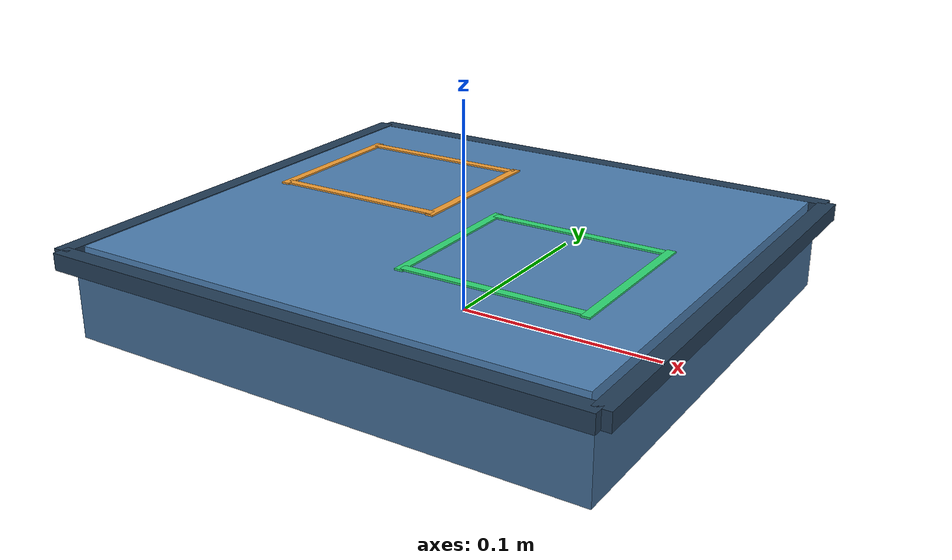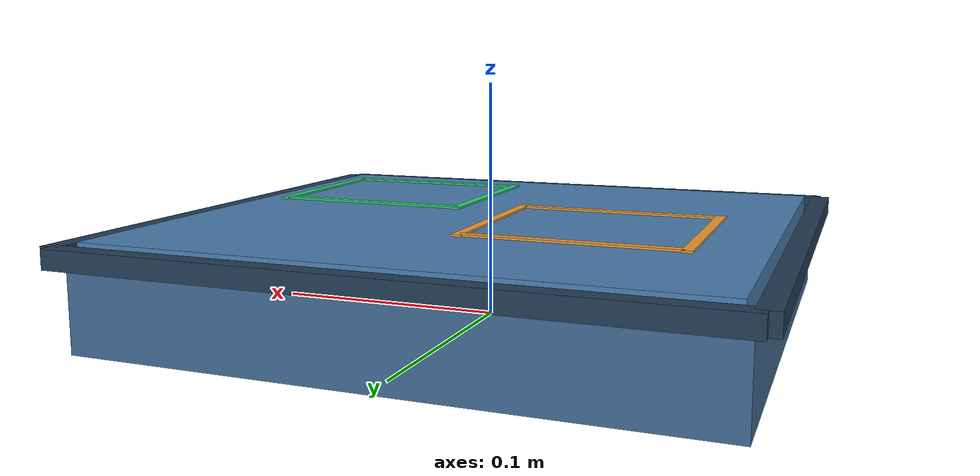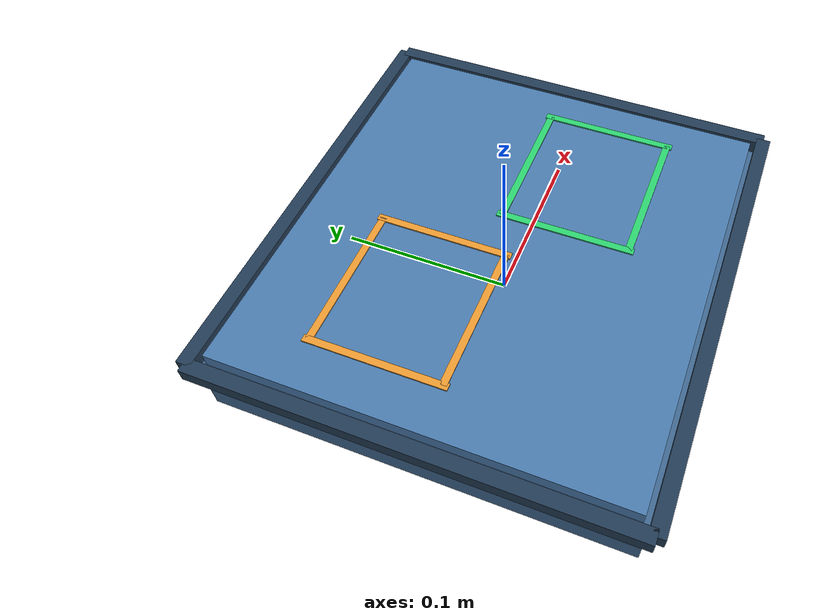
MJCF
<mujoco model="assembly_board">
  <asset>
    <material name="board_mat" rgba="0.26 0.42 0.58 1"/>
    <material name="board_top_mat" rgba="0.30 0.50 0.70 1"/>
    <material name="edge_mat" rgba="0.14 0.24 0.34 1"/>
    <material name="mark_mat" rgba="0.12 0.12 0.12 1"/>
    <material name="hex_frame_mat" rgba="0.18 0.85 0.45 1"/>
    <material name="round_frame_mat" rgba="0.95 0.62 0.20 1"/>
  </asset>

  <worldbody>
    <body>
      <body name="object">
        <site name="top_region" type="box" pos="0 0 0.070"
              quat="1 0 0 0" size="0.115 0.105 0.040" rgba="0 0 0 0"/>
        <site name="hex_region" type="box" pos="0.055 -0.030 0.070"
              quat="1 0 0 0" size="0.040 0.036 0.040" rgba="0 0 0 0"/>
        <site name="round_region" type="box" pos="-0.055 0.030 0.070"
              quat="1 0 0 0" size="0.040 0.036 0.040" rgba="0 0 0 0"/>

        <geom name="board_collision" type="box" pos="0 0 0.017"
              size="0.125 0.115 0.017" material="board_mat"
              density="6000" friction="1.5 0.02 0.001"
              solimp="0.99 0.99 0.001" solref="0.005 1" group="0"/>
        <geom name="board_visual" type="box" pos="0 0 0.017"
              size="0.125 0.115 0.017" material="board_mat"
              contype="0" conaffinity="0" group="1"/>
        <geom name="board_top_visual" type="box" pos="0 0 0.039"
              size="0.122 0.112 0.004" material="board_top_mat"
              contype="0" conaffinity="0" group="1"/>

        <geom name="edge_front_visual" type="box" pos="0 -0.119 0.038"
              size="0.129 0.004 0.004" material="edge_mat"
              contype="0" conaffinity="0" group="1"/>
        <geom name="edge_back_visual" type="box" pos="0 0.119 0.038"
              size="0.129 0.004 0.004" material="edge_mat"
              contype="0" conaffinity="0" group="1"/>
        <geom name="edge_left_visual" type="box" pos="-0.129 0 0.038"
              size="0.004 0.119 0.004" material="edge_mat"
              contype="0" conaffinity="0" group="1"/>
        <geom name="edge_right_visual" type="box" pos="0.129 0 0.038"
              size="0.004 0.119 0.004" material="edge_mat"
              contype="0" conaffinity="0" group="1"/>

        <geom name="hex_frame_front_visual" type="box" pos="0.055 -0.066 0.047"
              size="0.042 0.002 0.0004" material="hex_frame_mat"
              contype="0" conaffinity="0" group="1"/>
        <geom name="hex_frame_back_visual" type="box" pos="0.055 0.006 0.047"
              size="0.042 0.002 0.0004" material="hex_frame_mat"
              contype="0" conaffinity="0" group="1"/>
        <geom name="hex_frame_left_visual" type="box" pos="0.013 -0.030 0.047"
              size="0.002 0.039 0.0004" material="hex_frame_mat"
              contype="0" conaffinity="0" group="1"/>
        <geom name="hex_frame_right_visual" type="box" pos="0.097 -0.030 0.047"
              size="0.002 0.039 0.0004" material="hex_frame_mat"
              contype="0" conaffinity="0" group="1"/>

        <geom name="round_frame_front_visual" type="box" pos="-0.055 -0.006 0.047"
              size="0.042 0.002 0.0004" material="round_frame_mat"
              contype="0" conaffinity="0" group="1"/>
        <geom name="round_frame_back_visual" type="box" pos="-0.055 0.066 0.047"
              size="0.042 0.002 0.0004" material="round_frame_mat"
              contype="0" conaffinity="0" group="1"/>
        <geom name="round_frame_left_visual" type="box" pos="-0.097 0.030 0.047"
              size="0.002 0.039 0.0004" material="round_frame_mat"
              contype="0" conaffinity="0" group="1"/>
        <geom name="round_frame_right_visual" type="box" pos="-0.013 0.030 0.047"
              size="0.002 0.039 0.0004" material="round_frame_mat"
              contype="0" conaffinity="0" group="1"/>
      </body>

      <site name="bottom_site" pos="0 0 -0.002" size="0.003" rgba="0 0 0 0"/>
      <site name="top_site" pos="0 0 0.116" size="0.003" rgba="0 0 0 0"/>
      <site name="horizontal_radius_site" pos="0.132 0 0.026" size="0.003" rgba="0 0 0 0"/>
    </body>
  </worldbody>
</mujoco>
